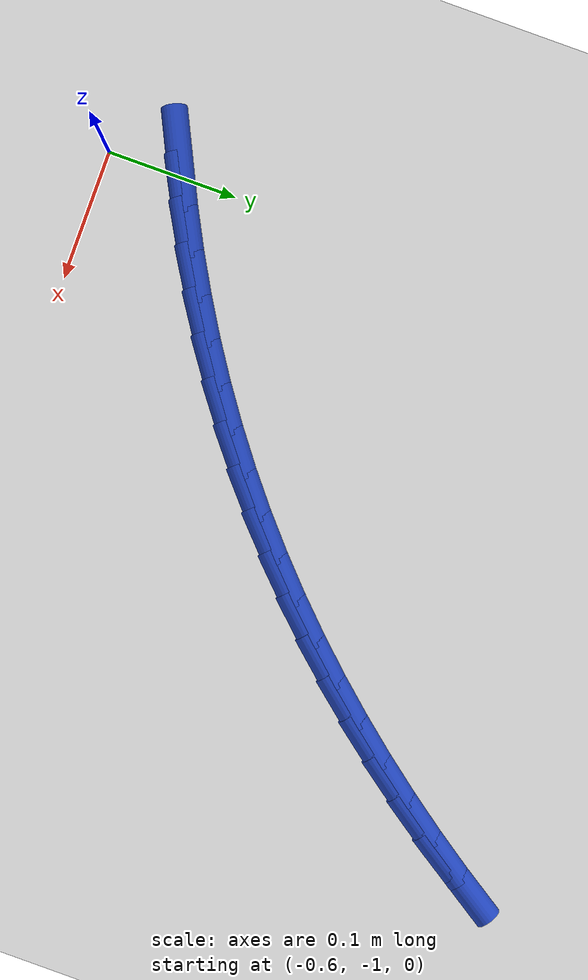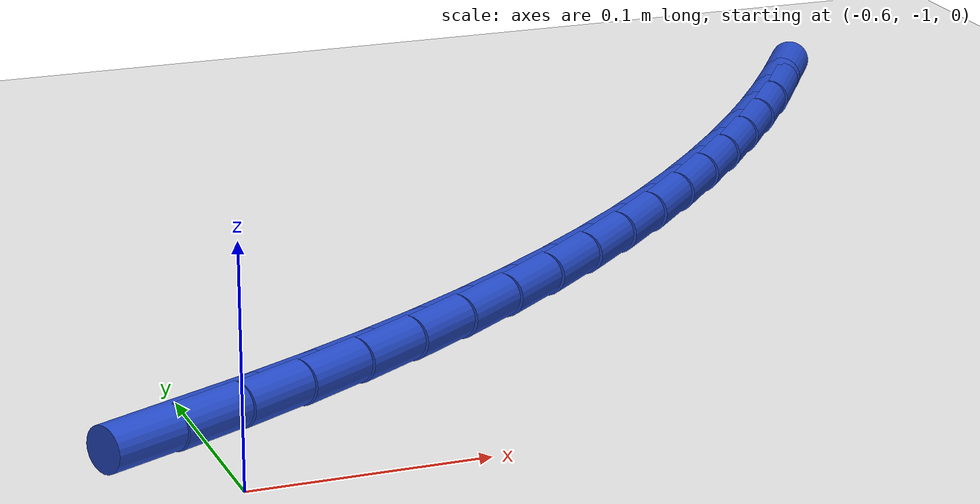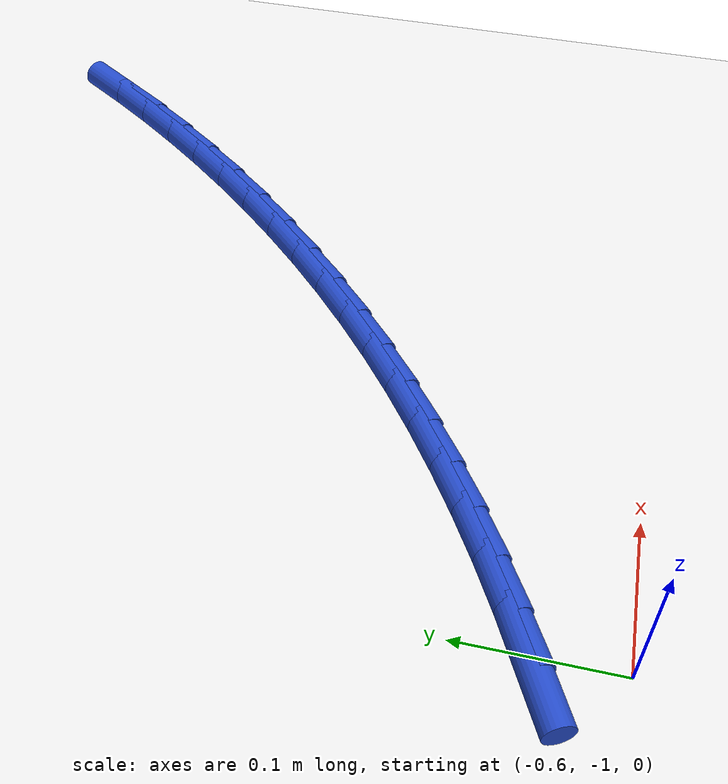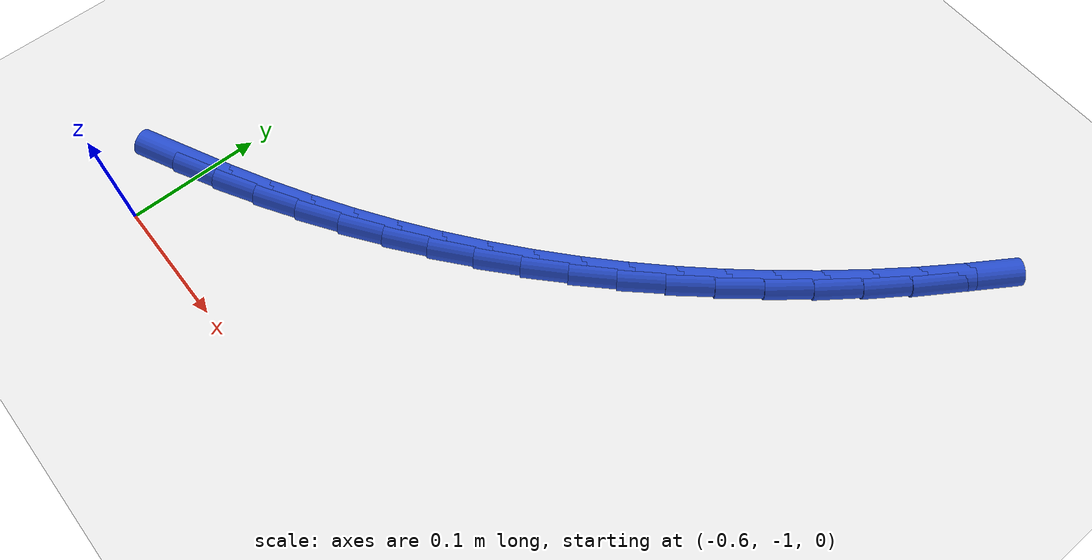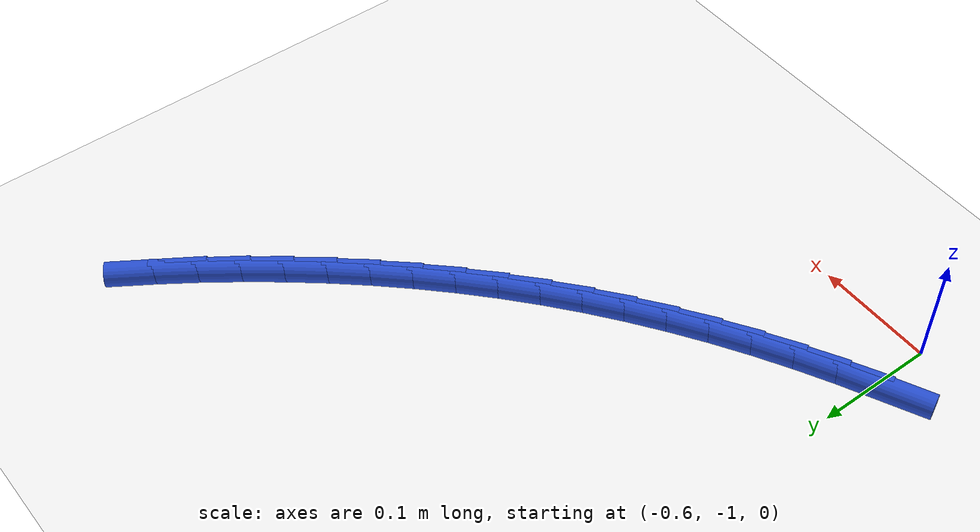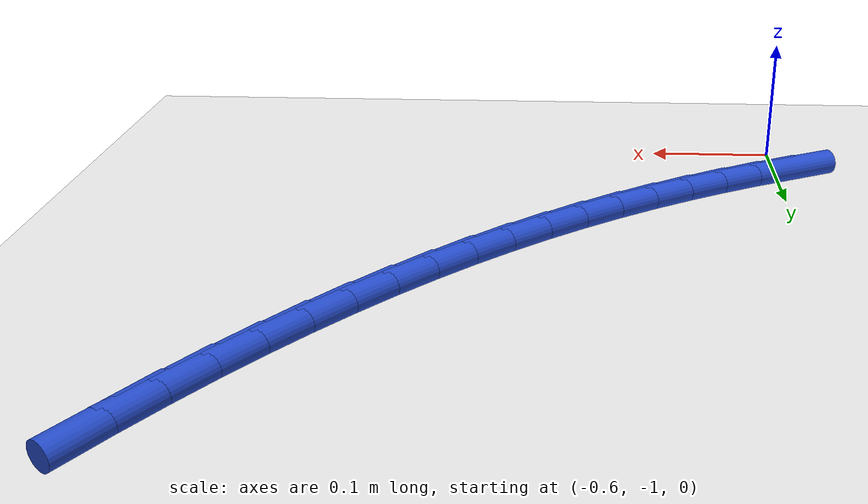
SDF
<sdf version="1.6">
 <world name="default">
  <model name="ground_plane">
   <static>1</static>
   <link name="link">
    <collision name="collision">
     <geometry><plane><normal>0 0 1</normal><size>100 100</size></plane></geometry>
     <surface><friction><ode><mu>100</mu><mu2>50</mu2></ode></friction></surface>
    </collision>
    <visual name="visual">
     <cast_shadows>0</cast_shadows>
     <geometry><plane><normal>0 0 1</normal><size>100 100</size></plane></geometry>
     <material>
      <script><uri>file://media/materials/scripts/gazebo.material</uri><name>Gazebo/WhiteGlow</name></script>
     </material>
    </visual>
   </link>
  </model>
  <model name="line">
   <link name="link_185">
    <pose>-0.6093048630919005 -0.9465121447800412 0.01 0 1.57 0.44950653052711914</pose>
    <collision name="collision">
     <geometry><cylinder><radius>0.01</radius><length>0.08</length></cylinder></geometry>
    </collision>
    <visual name="visual">
     <material>
      <script><name>Gazebo/Blue</name><uri>file://media/materials/scripts/gazebo.material</uri></script>
     </material>
     <geometry><cylinder><radius>0.01</radius><length>0.08</length></cylinder></geometry>
    </visual>
   </link>
   <link name="link_186">
    <pose>-0.5787332619171752 -0.9317629799236284 0.01 0 1.57 0.48121907513349516</pose>
    <collision name="collision">
     <geometry><cylinder><radius>0.01</radius><length>0.08</length></cylinder></geometry>
    </collision>
    <visual name="visual">
     <material>
      <script><name>Gazebo/Blue</name><uri>file://media/materials/scripts/gazebo.material</uri></script>
     </material>
     <geometry><cylinder><radius>0.01</radius><length>0.08</length></cylinder></geometry>
    </visual>
   </link>
   <link name="link_187">
    <pose>-0.5487703930709183 -0.9161175288674409 0.01 0 1.57 0.5135372876172319</pose>
    <collision name="collision">
     <geometry><cylinder><radius>0.01</radius><length>0.08</length></cylinder></geometry>
    </collision>
    <visual name="visual">
     <material>
      <script><name>Gazebo/Blue</name><uri>file://media/materials/scripts/gazebo.material</uri></script>
     </material>
     <geometry><cylinder><radius>0.01</radius><length>0.08</length></cylinder></geometry>
    </visual>
   </link>
   <link name="link_188">
    <pose>-0.5194287810495525 -0.8995685080598316 0.01 0 1.57 0.5464212952962162</pose>
    <collision name="collision">
     <geometry><cylinder><radius>0.01</radius><length>0.08</length></cylinder></geometry>
    </collision>
    <visual name="visual">
     <material>
      <script><name>Gazebo/Blue</name><uri>file://media/materials/scripts/gazebo.material</uri></script>
     </material>
     <geometry><cylinder><radius>0.01</radius><length>0.08</length></cylinder></geometry>
    </visual>
   </link>
   <link name="link_189">
    <pose>-0.4907209503495014 -0.8821086339491534 0.01 0 1.57 0.5798250779646705</pose>
    <collision name="collision">
     <geometry><cylinder><radius>0.01</radius><length>0.08</length></cylinder></geometry>
    </collision>
    <visual name="visual">
     <material>
      <script><name>Gazebo/Blue</name><uri>file://media/materials/scripts/gazebo.material</uri></script>
     </material>
     <geometry><cylinder><radius>0.01</radius><length>0.08</length></cylinder></geometry>
    </visual>
   </link>
   <link name="link_190">
    <pose>-0.46265942546718786 -0.863730622983759 0.01 0 1.57 0.6136966237991985</pose>
    <collision name="collision">
     <geometry><cylinder><radius>0.01</radius><length>0.08</length></cylinder></geometry>
    </collision>
    <visual name="visual">
     <material>
      <script><name>Gazebo/Blue</name><uri>file://media/materials/scripts/gazebo.material</uri></script>
     </material>
     <geometry><cylinder><radius>0.01</radius><length>0.08</length></cylinder></geometry>
    </visual>
   </link>
   <link name="link_191">
    <pose>-0.43525673089903666 -0.8444271916120023 0.01 0 1.57 0.6479782320722804</pose>
    <collision name="collision">
     <geometry><cylinder><radius>0.01</radius><length>0.08</length></cylinder></geometry>
    </collision>
    <visual name="visual">
     <material>
      <script><name>Gazebo/Blue</name><uri>file://media/materials/scripts/gazebo.material</uri></script>
     </material>
     <geometry><cylinder><radius>0.01</radius><length>0.08</length></cylinder></geometry>
    </visual>
   </link>
   <link name="link_192">
    <pose>-0.40852539114147085 -0.824191056282236 0.01 0 1.57 0.6826069672274832</pose>
    <collision name="collision">
     <geometry><cylinder><radius>0.01</radius><length>0.08</length></cylinder></geometry>
    </collision>
    <visual name="visual">
     <material>
      <script><name>Gazebo/Blue</name><uri>file://media/materials/scripts/gazebo.material</uri></script>
     </material>
     <geometry><cylinder><radius>0.01</radius><length>0.08</length></cylinder></geometry>
    </visual>
   </link>
   <link name="link_193">
    <pose>-0.3824779306909139 -0.8030149334428129 0.01 0 1.57 0.7174804412194453</pose>
    <collision name="collision">
     <geometry><cylinder><radius>0.01</radius><length>0.08</length></cylinder></geometry>
    </collision>
    <visual name="visual">
     <material>
      <script><name>Gazebo/Blue</name><uri>file://media/materials/scripts/gazebo.material</uri></script>
     </material>
     <geometry><cylinder><radius>0.01</radius><length>0.08</length></cylinder></geometry>
    </visual>
   </link>
   <link name="link_194">
    <pose>-0.35712684158291935 -0.7808930661930992 0.01 0 1.57 0.7518972522898012</pose>
    <collision name="collision">
     <geometry><cylinder><radius>0.01</radius><length>0.08</length></cylinder></geometry>
    </collision>
    <visual name="visual">
     <material>
      <script><name>Gazebo/Blue</name><uri>file://media/materials/scripts/gazebo.material</uri></script>
     </material>
     <geometry><cylinder><radius>0.01</radius><length>0.08</length></cylinder></geometry>
    </visual>
   </link>
   <link name="link_195">
    <pose>-0.33248400550253937 -0.7578484027230987 0.01 0 1.57 0.7853088363675721</pose>
    <collision name="collision">
     <geometry><cylinder><radius>0.01</radius><length>0.08</length></cylinder></geometry>
    </collision>
    <visual name="visual">
     <material>
      <script><name>Gazebo/Blue</name><uri>file://media/materials/scripts/gazebo.material</uri></script>
     </material>
     <geometry><cylinder><radius>0.01</radius><length>0.08</length></cylinder></geometry>
    </visual>
   </link>
   <link name="link_196">
    <pose>-0.3085607610687685 -0.7339294318923315 0.01 0 1.57 0.81775414188208</pose>
    <collision name="collision">
     <geometry><cylinder><radius>0.01</radius><length>0.08</length></cylinder></geometry>
    </collision>
    <visual name="visual">
     <material>
      <script><name>Gazebo/Blue</name><uri>file://media/materials/scripts/gazebo.material</uri></script>
     </material>
     <geometry><cylinder><radius>0.01</radius><length>0.08</length></cylinder></geometry>
    </visual>
   </link>
   <link name="link_197">
    <pose>-0.28536842795419637 -0.7091855336191968 0.01 0 1.57 0.8492963096280135</pose>
    <collision name="collision">
     <geometry><cylinder><radius>0.01</radius><length>0.08</length></cylinder></geometry>
    </collision>
    <visual name="visual">
     <material>
      <script><name>Gazebo/Blue</name><uri>file://media/materials/scripts/gazebo.material</uri></script>
     </material>
     <geometry><cylinder><radius>0.01</radius><length>0.08</length></cylinder></geometry>
    </visual>
   </link>
   <link name="link_198">
    <pose>-0.262918325831413 -0.6836660878220947 0.01 0 1.57 0.8800013761892447</pose>
    <collision name="collision">
     <geometry><cylinder><radius>0.01</radius><length>0.08</length></cylinder></geometry>
    </collision>
    <visual name="visual">
     <material>
      <script><name>Gazebo/Blue</name><uri>file://media/materials/scripts/gazebo.material</uri></script>
     </material>
     <geometry><cylinder><radius>0.01</radius><length>0.08</length></cylinder></geometry>
    </visual>
   </link>
   <link name="link_199">
    <pose>-0.24122177437300782 -0.6574204744194236 0.01 0 1.57 0.9099375026602253</pose>
    <collision name="collision">
     <geometry><cylinder><radius>0.01</radius><length>0.08</length></cylinder></geometry>
    </collision>
    <visual name="visual">
     <material>
      <script><name>Gazebo/Blue</name><uri>file://media/materials/scripts/gazebo.material</uri></script>
     </material>
     <geometry><cylinder><radius>0.01</radius><length>0.08</length></cylinder></geometry>
    </visual>
   </link>
   <link name="link_200">
    <pose>-0.2202900932515719 -0.6304980733295851 0.01 0 1.57 0.9391743867802962</pose>
    <collision name="collision">
     <geometry><cylinder><radius>0.01</radius><length>0.08</length></cylinder></geometry>
    </collision>
    <visual name="visual">
     <material>
      <script><name>Gazebo/Blue</name><uri>file://media/materials/scripts/gazebo.material</uri></script>
     </material>
     <geometry><cylinder><radius>0.01</radius><length>0.08</length></cylinder></geometry>
    </visual>
   </link>
   <link name="link_201">
    <pose>-0.2001346021396947 -0.6029482644709775 0.01 0 1.57 0.9677828398933306</pose>
    <collision name="collision">
     <geometry><cylinder><radius>0.01</radius><length>0.08</length></cylinder></geometry>
    </collision>
    <visual name="visual">
     <material>
      <script><name>Gazebo/Blue</name><uri>file://media/materials/scripts/gazebo.material</uri></script>
     </material>
     <geometry><cylinder><radius>0.01</radius><length>0.08</length></cylinder></geometry>
    </visual>
   </link>
   <link name="link_202">
    <pose>-0.18076662070996632 -0.5748204277620009 0.01 0 1.57 0.9958345101863725</pose>
    <collision name="collision">
     <geometry><cylinder><radius>0.01</radius><length>0.08</length></cylinder></geometry>
    </collision>
    <visual name="visual">
     <material>
      <script><name>Gazebo/Blue</name><uri>file://media/materials/scripts/gazebo.material</uri></script>
     </material>
     <geometry><cylinder><radius>0.01</radius><length>0.08</length></cylinder></geometry>
    </visual>
   </link>
  </model>
 </world>
</sdf>
